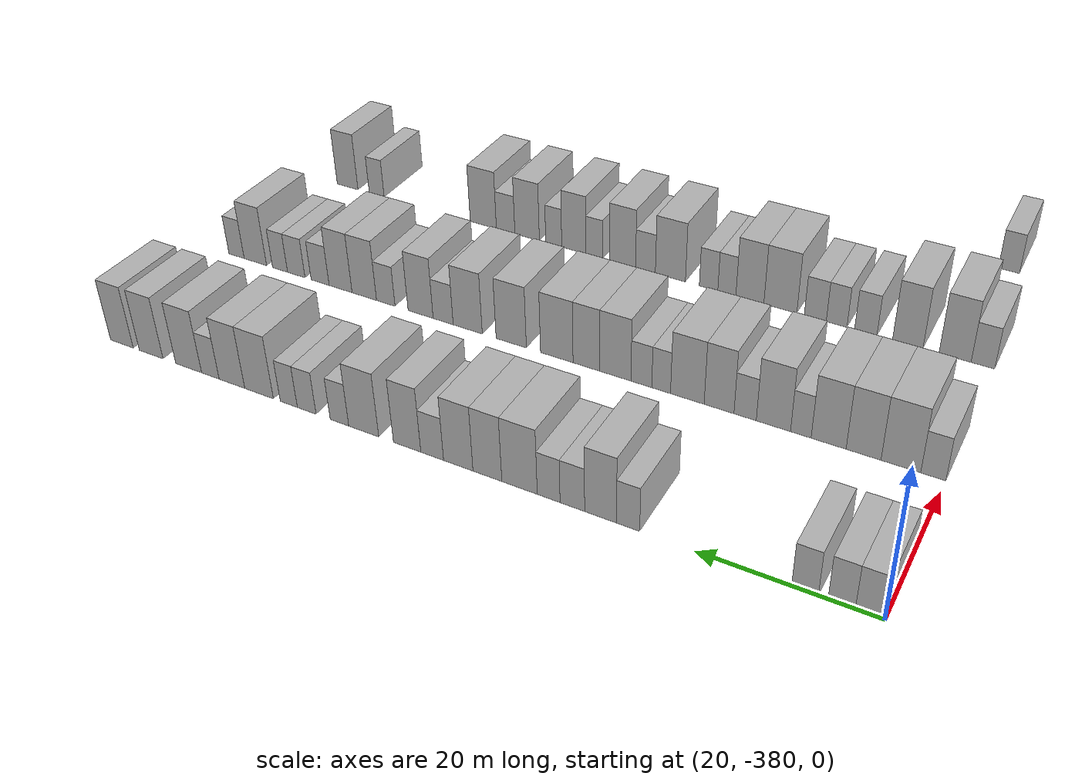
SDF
<sdf version="1.6">
 <world name="default">
  <model name="building_1">
   <static>1</static>
   <pose>25.0000 -378.5083 0 0.000000 0.000000 0.000000</pose>
   <link name="link">
    <pose>0 0 3.00 0 0 0</pose>
    <collision name="collision"><geometry><box><size>10.0000 2.9835 6.0000</size></box></geometry></collision>
    <visual name="visual">
     <cast_shadows>0</cast_shadows>
     <geometry><box><size>10.0000 2.9835 6.0000</size></box></geometry>
     <material>
      <script>
       <uri>model://HANNAS_wall/materials/scripts</uri>
       <uri>model://HANNAS_wall/materials/textures</uri>
       <name>vrc/HANNAS_wall</name>
      </script>
     </material>
    </visual>
   </link>
  </model>
  <model name="building_2">
   <static>1</static>
   <pose>25.0000 -375.6209 0 0.000000 0.000000 0.000000</pose>
   <link name="link">
    <pose>0 0 3.00 0 0 0</pose>
    <collision name="collision"><geometry><box><size>10.0000 2.7913 6.0000</size></box></geometry></collision>
    <visual name="visual">
     <cast_shadows>0</cast_shadows>
     <geometry><box><size>10.0000 2.7913 6.0000</size></box></geometry>
     <material>
      <script>
       <uri>model://HANNAS_wall/materials/scripts</uri>
       <uri>model://HANNAS_wall/materials/textures</uri>
       <name>vrc/HANNAS_wall</name>
      </script>
     </material>
    </visual>
   </link>
  </model>
  <model name="building_3">
   <static>1</static>
   <pose>25.0000 -371.8338 0 0.000000 0.000000 0.000000</pose>
   <link name="link">
    <pose>0 0 3.00 0 0 0</pose>
    <collision name="collision"><geometry><box><size>10.0000 2.7829 6.0000</size></box></geometry></collision>
    <visual name="visual">
     <cast_shadows>0</cast_shadows>
     <geometry><box><size>10.0000 2.7829 6.0000</size></box></geometry>
     <material>
      <script>
       <uri>model://HANNAS_wall/materials/scripts</uri>
       <uri>model://HANNAS_wall/materials/textures</uri>
       <name>vrc/HANNAS_wall</name>
      </script>
     </material>
    </visual>
   </link>
  </model>
  <model name="building_4">
   <static>1</static>
   <pose>25.0000 -352.3981 0 0.000000 0.000000 0.000000</pose>
   <link name="link">
    <pose>0 0 3.00 0 0 0</pose>
    <collision name="collision"><geometry><box><size>10.0000 2.6962 6.0000</size></box></geometry></collision>
    <visual name="visual">
     <cast_shadows>0</cast_shadows>
     <geometry><box><size>10.0000 2.6962 6.0000</size></box></geometry>
     <material>
      <script>
       <uri>model://HANNAS_wall/materials/scripts</uri>
       <uri>model://HANNAS_wall/materials/textures</uri>
       <name>vrc/HANNAS_wall</name>
      </script>
     </material>
    </visual>
   </link>
  </model>
  <model name="building_5">
   <static>1</static>
   <pose>25.0000 -349.1790 0 0.000000 0.000000 0.000000</pose>
   <link name="link">
    <pose>0 0 4.50 0 0 0</pose>
    <collision name="collision"><geometry><box><size>10.0000 3.7419 9.0000</size></box></geometry></collision>
    <visual name="visual">
     <cast_shadows>0</cast_shadows>
     <geometry><box><size>10.0000 3.7419 9.0000</size></box></geometry>
     <material>
      <script>
       <uri>model://HANNAS_wall/materials/scripts</uri>
       <uri>model://HANNAS_wall/materials/textures</uri>
       <name>vrc/HANNAS_wall</name>
      </script>
     </material>
    </visual>
   </link>
  </model>
  <model name="building_6">
   <static>1</static>
   <pose>25.0000 -345.8332 0 0.000000 0.000000 0.000000</pose>
   <link name="link">
    <pose>0 0 3.00 0 0 0</pose>
    <collision name="collision"><geometry><box><size>10.0000 2.9496 6.0000</size></box></geometry></collision>
    <visual name="visual">
     <cast_shadows>0</cast_shadows>
     <geometry><box><size>10.0000 2.9496 6.0000</size></box></geometry>
     <material>
      <script>
       <uri>model://HANNAS_wall/materials/scripts</uri>
       <uri>model://HANNAS_wall/materials/textures</uri>
       <name>vrc/HANNAS_wall</name>
      </script>
     </material>
    </visual>
   </link>
  </model>
  <model name="building_7">
   <static>1</static>
   <pose>25.0000 -342.9713 0 0.000000 0.000000 0.000000</pose>
   <link name="link">
    <pose>0 0 3.00 0 0 0</pose>
    <collision name="collision"><geometry><box><size>10.0000 2.7743 6.0000</size></box></geometry></collision>
    <visual name="visual">
     <cast_shadows>0</cast_shadows>
     <geometry><box><size>10.0000 2.7743 6.0000</size></box></geometry>
     <material>
      <script>
       <uri>model://HANNAS_wall/materials/scripts</uri>
       <uri>model://HANNAS_wall/materials/textures</uri>
       <name>vrc/HANNAS_wall</name>
      </script>
     </material>
    </visual>
   </link>
  </model>
  <model name="building_8">
   <static>1</static>
   <pose>25.0000 -339.3869 0 0.000000 0.000000 0.000000</pose>
   <link name="link">
    <pose>0 0 4.50 0 0 0</pose>
    <collision name="collision"><geometry><box><size>10.0000 4.3945 9.0000</size></box></geometry></collision>
    <visual name="visual">
     <cast_shadows>0</cast_shadows>
     <geometry><box><size>10.0000 4.3945 9.0000</size></box></geometry>
     <material>
      <script>
       <uri>model://HANNAS_wall/materials/scripts</uri>
       <uri>model://HANNAS_wall/materials/textures</uri>
       <name>vrc/HANNAS_wall</name>
      </script>
     </material>
    </visual>
   </link>
  </model>
  <model name="building_9">
   <static>1</static>
   <pose>25.0000 -335.3621 0 0.000000 0.000000 0.000000</pose>
   <link name="link">
    <pose>0 0 4.50 0 0 0</pose>
    <collision name="collision"><geometry><box><size>10.0000 3.6552 9.0000</size></box></geometry></collision>
    <visual name="visual">
     <cast_shadows>0</cast_shadows>
     <geometry><box><size>10.0000 3.6552 9.0000</size></box></geometry>
     <material>
      <script>
       <uri>model://HANNAS_wall/materials/scripts</uri>
       <uri>model://HANNAS_wall/materials/textures</uri>
       <name>vrc/HANNAS_wall</name>
      </script>
     </material>
    </visual>
   </link>
  </model>
  <model name="building_10">
   <static>1</static>
   <pose>25.0000 -331.6372 0 0.000000 0.000000 0.000000</pose>
   <link name="link">
    <pose>0 0 4.50 0 0 0</pose>
    <collision name="collision"><geometry><box><size>10.0000 3.7946 9.0000</size></box></geometry></collision>
    <visual name="visual">
     <cast_shadows>0</cast_shadows>
     <geometry><box><size>10.0000 3.7946 9.0000</size></box></geometry>
     <material>
      <script>
       <uri>model://HANNAS_wall/materials/scripts</uri>
       <uri>model://HANNAS_wall/materials/textures</uri>
       <name>vrc/HANNAS_wall</name>
      </script>
     </material>
    </visual>
   </link>
  </model>
  <model name="building_11">
   <static>1</static>
   <pose>25.0000 -328.2481 0 0.000000 0.000000 0.000000</pose>
   <link name="link">
    <pose>0 0 3.00 0 0 0</pose>
    <collision name="collision"><geometry><box><size>10.0000 2.9835 6.0000</size></box></geometry></collision>
    <visual name="visual">
     <cast_shadows>0</cast_shadows>
     <geometry><box><size>10.0000 2.9835 6.0000</size></box></geometry>
     <material>
      <script>
       <uri>model://HANNAS_wall/materials/scripts</uri>
       <uri>model://HANNAS_wall/materials/textures</uri>
       <name>vrc/HANNAS_wall</name>
      </script>
     </material>
    </visual>
   </link>
  </model>
  <model name="building_12">
   <static>1</static>
   <pose>25.0000 -324.9343 0 0.000000 0.000000 0.000000</pose>
   <link name="link">
    <pose>0 0 4.50 0 0 0</pose>
    <collision name="collision"><geometry><box><size>10.0000 3.6440 9.0000</size></box></geometry></collision>
    <visual name="visual">
     <cast_shadows>0</cast_shadows>
     <geometry><box><size>10.0000 3.6440 9.0000</size></box></geometry>
     <material>
      <script>
       <uri>model://HANNAS_wall/materials/scripts</uri>
       <uri>model://HANNAS_wall/materials/textures</uri>
       <name>vrc/HANNAS_wall</name>
      </script>
     </material>
    </visual>
   </link>
  </model>
  <model name="building_13">
   <static>1</static>
   <pose>25.0000 -319.0529 0 0.000000 0.000000 0.000000</pose>
   <link name="link">
    <pose>0 0 4.50 0 0 0</pose>
    <collision name="collision"><geometry><box><size>10.0000 4.1188 9.0000</size></box></geometry></collision>
    <visual name="visual">
     <cast_shadows>0</cast_shadows>
     <geometry><box><size>10.0000 4.1188 9.0000</size></box></geometry>
     <material>
      <script>
       <uri>model://HANNAS_wall/materials/scripts</uri>
       <uri>model://HANNAS_wall/materials/textures</uri>
       <name>vrc/HANNAS_wall</name>
      </script>
     </material>
    </visual>
   </link>
  </model>
  <model name="building_14">
   <static>1</static>
   <pose>25.0000 -315.7018 0 0.000000 0.000000 0.000000</pose>
   <link name="link">
    <pose>0 0 3.00 0 0 0</pose>
    <collision name="collision"><geometry><box><size>10.0000 2.5833 6.0000</size></box></geometry></collision>
    <visual name="visual">
     <cast_shadows>0</cast_shadows>
     <geometry><box><size>10.0000 2.5833 6.0000</size></box></geometry>
     <material>
      <script>
       <uri>model://HANNAS_wall/materials/scripts</uri>
       <uri>model://HANNAS_wall/materials/textures</uri>
       <name>vrc/HANNAS_wall</name>
      </script>
     </material>
    </visual>
   </link>
  </model>
  <model name="building_15">
   <static>1</static>
   <pose>25.0000 -311.0761 0 0.000000 0.000000 0.000000</pose>
   <link name="link">
    <pose>0 0 3.00 0 0 0</pose>
    <collision name="collision"><geometry><box><size>10.0000 2.6683 6.0000</size></box></geometry></collision>
    <visual name="visual">
     <cast_shadows>0</cast_shadows>
     <geometry><box><size>10.0000 2.6683 6.0000</size></box></geometry>
     <material>
      <script>
       <uri>model://HANNAS_wall/materials/scripts</uri>
       <uri>model://HANNAS_wall/materials/textures</uri>
       <name>vrc/HANNAS_wall</name>
      </script>
     </material>
    </visual>
   </link>
  </model>
  <model name="building_16">
   <static>1</static>
   <pose>25.0000 -308.5085 0 0.000000 0.000000 0.000000</pose>
   <link name="link">
    <pose>0 0 3.00 0 0 0</pose>
    <collision name="collision"><geometry><box><size>10.0000 2.4668 6.0000</size></box></geometry></collision>
    <visual name="visual">
     <cast_shadows>0</cast_shadows>
     <geometry><box><size>10.0000 2.4668 6.0000</size></box></geometry>
     <material>
      <script>
       <uri>model://HANNAS_wall/materials/scripts</uri>
       <uri>model://HANNAS_wall/materials/textures</uri>
       <name>vrc/HANNAS_wall</name>
      </script>
     </material>
    </visual>
   </link>
  </model>
  <model name="building_17">
   <static>1</static>
   <pose>25.0000 -304.1616 0 0.000000 0.000000 0.000000</pose>
   <link name="link">
    <pose>0 0 4.50 0 0 0</pose>
    <collision name="collision"><geometry><box><size>10.0000 4.2270 9.0000</size></box></geometry></collision>
    <visual name="visual">
     <cast_shadows>0</cast_shadows>
     <geometry><box><size>10.0000 4.2270 9.0000</size></box></geometry>
     <material>
      <script>
       <uri>model://HANNAS_wall/materials/scripts</uri>
       <uri>model://HANNAS_wall/materials/textures</uri>
       <name>vrc/HANNAS_wall</name>
      </script>
     </material>
    </visual>
   </link>
  </model>
  <model name="building_18">
   <static>1</static>
   <pose>25.0000 -300.1236 0 0.000000 0.000000 0.000000</pose>
   <link name="link">
    <pose>0 0 4.50 0 0 0</pose>
    <collision name="collision"><geometry><box><size>10.0000 3.8491 9.0000</size></box></geometry></collision>
    <visual name="visual">
     <cast_shadows>0</cast_shadows>
     <geometry><box><size>10.0000 3.8491 9.0000</size></box></geometry>
     <material>
      <script>
       <uri>model://HANNAS_wall/materials/scripts</uri>
       <uri>model://HANNAS_wall/materials/textures</uri>
       <name>vrc/HANNAS_wall</name>
      </script>
     </material>
    </visual>
   </link>
  </model>
  <model name="building_19">
   <static>1</static>
   <pose>25.0000 -296.8605 0 0.000000 0.000000 0.000000</pose>
   <link name="link">
    <pose>0 0 3.00 0 0 0</pose>
    <collision name="collision"><geometry><box><size>10.0000 2.6770 6.0000</size></box></geometry></collision>
    <visual name="visual">
     <cast_shadows>0</cast_shadows>
     <geometry><box><size>10.0000 2.6770 6.0000</size></box></geometry>
     <material>
      <script>
       <uri>model://HANNAS_wall/materials/scripts</uri>
       <uri>model://HANNAS_wall/materials/textures</uri>
       <name>vrc/HANNAS_wall</name>
      </script>
     </material>
    </visual>
   </link>
  </model>
  <model name="building_20">
   <static>1</static>
   <pose>25.0000 -293.5178 0 0.000000 0.000000 0.000000</pose>
   <link name="link">
    <pose>0 0 4.50 0 0 0</pose>
    <collision name="collision"><geometry><box><size>10.0000 4.0084 9.0000</size></box></geometry></collision>
    <visual name="visual">
     <cast_shadows>0</cast_shadows>
     <geometry><box><size>10.0000 4.0084 9.0000</size></box></geometry>
     <material>
      <script>
       <uri>model://HANNAS_wall/materials/scripts</uri>
       <uri>model://HANNAS_wall/materials/textures</uri>
       <name>vrc/HANNAS_wall</name>
      </script>
     </material>
    </visual>
   </link>
  </model>
  <model name="building_21">
   <static>1</static>
   <pose>25.0000 -287.6362 0 0.000000 0.000000 0.000000</pose>
   <link name="link">
    <pose>0 0 4.50 0 0 0</pose>
    <collision name="collision"><geometry><box><size>10.0000 3.7547 9.0000</size></box></geometry></collision>
    <visual name="visual">
     <cast_shadows>0</cast_shadows>
     <geometry><box><size>10.0000 3.7547 9.0000</size></box></geometry>
     <material>
      <script>
       <uri>model://HANNAS_wall/materials/scripts</uri>
       <uri>model://HANNAS_wall/materials/textures</uri>
       <name>vrc/HANNAS_wall</name>
      </script>
     </material>
    </visual>
   </link>
  </model>
  <model name="building_22">
   <static>1</static>
   <pose>25.0000 -282.9233 0 0.000000 0.000000 0.000000</pose>
   <link name="link">
    <pose>0 0 4.50 0 0 0</pose>
    <collision name="collision"><geometry><box><size>10.0000 3.6711 9.0000</size></box></geometry></collision>
    <visual name="visual">
     <cast_shadows>0</cast_shadows>
     <geometry><box><size>10.0000 3.6711 9.0000</size></box></geometry>
     <material>
      <script>
       <uri>model://HANNAS_wall/materials/scripts</uri>
       <uri>model://HANNAS_wall/materials/textures</uri>
       <name>vrc/HANNAS_wall</name>
      </script>
     </material>
    </visual>
   </link>
  </model>
  <model name="building_183">
   <static>1</static>
   <pose>47.0000 -378.6037 0 0.000000 0.000000 0.000000</pose>
   <link name="link">
    <pose>0 0 3.00 0 0 0</pose>
    <collision name="collision"><geometry><box><size>10.0000 2.7925 6.0000</size></box></geometry></collision>
    <visual name="visual">
     <cast_shadows>0</cast_shadows>
     <geometry><box><size>10.0000 2.7925 6.0000</size></box></geometry>
     <material>
      <script>
       <uri>model://HANNAS_wall/materials/scripts</uri>
       <uri>model://HANNAS_wall/materials/textures</uri>
       <name>vrc/HANNAS_wall</name>
      </script>
     </material>
    </visual>
   </link>
  </model>
  <model name="building_184">
   <static>1</static>
   <pose>47.0000 -374.9701 0 0.000000 0.000000 0.000000</pose>
   <link name="link">
    <pose>0 0 4.50 0 0 0</pose>
    <collision name="collision"><geometry><box><size>10.0000 4.4749 9.0000</size></box></geometry></collision>
    <visual name="visual">
     <cast_shadows>0</cast_shadows>
     <geometry><box><size>10.0000 4.4749 9.0000</size></box></geometry>
     <material>
      <script>
       <uri>model://HANNAS_wall/materials/scripts</uri>
       <uri>model://HANNAS_wall/materials/textures</uri>
       <name>vrc/HANNAS_wall</name>
      </script>
     </material>
    </visual>
   </link>
  </model>
  <model name="building_185">
   <static>1</static>
   <pose>47.0000 -370.7247 0 0.000000 0.000000 0.000000</pose>
   <link name="link">
    <pose>0 0 4.50 0 0 0</pose>
    <collision name="collision"><geometry><box><size>10.0000 4.0158 9.0000</size></box></geometry></collision>
    <visual name="visual">
     <cast_shadows>0</cast_shadows>
     <geometry><box><size>10.0000 4.0158 9.0000</size></box></geometry>
     <material>
      <script>
       <uri>model://HANNAS_wall/materials/scripts</uri>
       <uri>model://HANNAS_wall/materials/textures</uri>
       <name>vrc/HANNAS_wall</name>
      </script>
     </material>
    </visual>
   </link>
  </model>
  <model name="building_186">
   <static>1</static>
   <pose>47.0000 -366.6584 0 0.000000 0.000000 0.000000</pose>
   <link name="link">
    <pose>0 0 4.50 0 0 0</pose>
    <collision name="collision"><geometry><box><size>10.0000 4.1169 9.0000</size></box></geometry></collision>
    <visual name="visual">
     <cast_shadows>0</cast_shadows>
     <geometry><box><size>10.0000 4.1169 9.0000</size></box></geometry>
     <material>
      <script>
       <uri>model://HANNAS_wall/materials/scripts</uri>
       <uri>model://HANNAS_wall/materials/textures</uri>
       <name>vrc/HANNAS_wall</name>
      </script>
     </material>
    </visual>
   </link>
  </model>
  <model name="building_187">
   <static>1</static>
   <pose>47.0000 -363.3708 0 0.000000 0.000000 0.000000</pose>
   <link name="link">
    <pose>0 0 3.00 0 0 0</pose>
    <collision name="collision"><geometry><box><size>10.0000 2.4584 6.0000</size></box></geometry></collision>
    <visual name="visual">
     <cast_shadows>0</cast_shadows>
     <geometry><box><size>10.0000 2.4584 6.0000</size></box></geometry>
     <material>
      <script>
       <uri>model://HANNAS_wall/materials/scripts</uri>
       <uri>model://HANNAS_wall/materials/textures</uri>
       <name>vrc/HANNAS_wall</name>
      </script>
     </material>
    </visual>
   </link>
  </model>
  <model name="building_188">
   <static>1</static>
   <pose>47.0000 -360.0653 0 0.000000 0.000000 0.000000</pose>
   <link name="link">
    <pose>0 0 4.50 0 0 0</pose>
    <collision name="collision"><geometry><box><size>10.0000 4.1525 9.0000</size></box></geometry></collision>
    <visual name="visual">
     <cast_shadows>0</cast_shadows>
     <geometry><box><size>10.0000 4.1525 9.0000</size></box></geometry>
     <material>
      <script>
       <uri>model://HANNAS_wall/materials/scripts</uri>
       <uri>model://HANNAS_wall/materials/textures</uri>
       <name>vrc/HANNAS_wall</name>
      </script>
     </material>
    </visual>
   </link>
  </model>
  <model name="building_189">
   <static>1</static>
   <pose>47.0000 -356.6125 0 0.000000 0.000000 0.000000</pose>
   <link name="link">
    <pose>0 0 3.00 0 0 0</pose>
    <collision name="collision"><geometry><box><size>10.0000 2.7532 6.0000</size></box></geometry></collision>
    <visual name="visual">
     <cast_shadows>0</cast_shadows>
     <geometry><box><size>10.0000 2.7532 6.0000</size></box></geometry>
     <material>
      <script>
       <uri>model://HANNAS_wall/materials/scripts</uri>
       <uri>model://HANNAS_wall/materials/textures</uri>
       <name>vrc/HANNAS_wall</name>
      </script>
     </material>
    </visual>
   </link>
  </model>
  <model name="building_190">
   <static>1</static>
   <pose>47.0000 -353.3675 0 0.000000 0.000000 0.000000</pose>
   <link name="link">
    <pose>0 0 4.50 0 0 0</pose>
    <collision name="collision"><geometry><box><size>10.0000 3.7368 9.0000</size></box></geometry></collision>
    <visual name="visual">
     <cast_shadows>0</cast_shadows>
     <geometry><box><size>10.0000 3.7368 9.0000</size></box></geometry>
     <material>
      <script>
       <uri>model://HANNAS_wall/materials/scripts</uri>
       <uri>model://HANNAS_wall/materials/textures</uri>
       <name>vrc/HANNAS_wall</name>
      </script>
     </material>
    </visual>
   </link>
  </model>
  <model name="building_191">
   <static>1</static>
   <pose>47.0000 -349.3487 0 0.000000 0.000000 0.000000</pose>
   <link name="link">
    <pose>0 0 4.50 0 0 0</pose>
    <collision name="collision"><geometry><box><size>10.0000 4.3009 9.0000</size></box></geometry></collision>
    <visual name="visual">
     <cast_shadows>0</cast_shadows>
     <geometry><box><size>10.0000 4.3009 9.0000</size></box></geometry>
     <material>
      <script>
       <uri>model://HANNAS_wall/materials/scripts</uri>
       <uri>model://HANNAS_wall/materials/textures</uri>
       <name>vrc/HANNAS_wall</name>
      </script>
     </material>
    </visual>
   </link>
  </model>
  <model name="building_192">
   <static>1</static>
   <pose>47.0000 -345.9846 0 0.000000 0.000000 0.000000</pose>
   <link name="link">
    <pose>0 0 3.00 0 0 0</pose>
    <collision name="collision"><geometry><box><size>10.0000 2.4273 6.0000</size></box></geometry></collision>
    <visual name="visual">
     <cast_shadows>0</cast_shadows>
     <geometry><box><size>10.0000 2.4273 6.0000</size></box></geometry>
     <material>
      <script>
       <uri>model://HANNAS_wall/materials/scripts</uri>
       <uri>model://HANNAS_wall/materials/textures</uri>
       <name>vrc/HANNAS_wall</name>
      </script>
     </material>
    </visual>
   </link>
  </model>
  <model name="building_193">
   <static>1</static>
   <pose>47.0000 -343.4006 0 0.000000 0.000000 0.000000</pose>
   <link name="link">
    <pose>0 0 3.00 0 0 0</pose>
    <collision name="collision"><geometry><box><size>10.0000 2.7406 6.0000</size></box></geometry></collision>
    <visual name="visual">
     <cast_shadows>0</cast_shadows>
     <geometry><box><size>10.0000 2.7406 6.0000</size></box></geometry>
     <material>
      <script>
       <uri>model://HANNAS_wall/materials/scripts</uri>
       <uri>model://HANNAS_wall/materials/textures</uri>
       <name>vrc/HANNAS_wall</name>
      </script>
     </material>
    </visual>
   </link>
  </model>
  <model name="building_194">
   <static>1</static>
   <pose>47.0000 -339.9591 0 0.000000 0.000000 0.000000</pose>
   <link name="link">
    <pose>0 0 4.50 0 0 0</pose>
    <collision name="collision"><geometry><box><size>10.0000 4.1425 9.0000</size></box></geometry></collision>
    <visual name="visual">
     <cast_shadows>0</cast_shadows>
     <geometry><box><size>10.0000 4.1425 9.0000</size></box></geometry>
     <material>
      <script>
       <uri>model://HANNAS_wall/materials/scripts</uri>
       <uri>model://HANNAS_wall/materials/textures</uri>
       <name>vrc/HANNAS_wall</name>
      </script>
     </material>
    </visual>
   </link>
  </model>
  <model name="building_195">
   <static>1</static>
   <pose>47.0000 -336.0669 0 0.000000 0.000000 0.000000</pose>
   <link name="link">
    <pose>0 0 4.50 0 0 0</pose>
    <collision name="collision"><geometry><box><size>10.0000 3.6419 9.0000</size></box></geometry></collision>
    <visual name="visual">
     <cast_shadows>0</cast_shadows>
     <geometry><box><size>10.0000 3.6419 9.0000</size></box></geometry>
     <material>
      <script>
       <uri>model://HANNAS_wall/materials/scripts</uri>
       <uri>model://HANNAS_wall/materials/textures</uri>
       <name>vrc/HANNAS_wall</name>
      </script>
     </material>
    </visual>
   </link>
  </model>
  <model name="building_196">
   <static>1</static>
   <pose>47.0000 -331.9987 0 0.000000 0.000000 0.000000</pose>
   <link name="link">
    <pose>0 0 4.50 0 0 0</pose>
    <collision name="collision"><geometry><box><size>10.0000 4.4944 9.0000</size></box></geometry></collision>
    <visual name="visual">
     <cast_shadows>0</cast_shadows>
     <geometry><box><size>10.0000 4.4944 9.0000</size></box></geometry>
     <material>
      <script>
       <uri>model://HANNAS_wall/materials/scripts</uri>
       <uri>model://HANNAS_wall/materials/textures</uri>
       <name>vrc/HANNAS_wall</name>
      </script>
     </material>
    </visual>
   </link>
  </model>
  <model name="building_197">
   <static>1</static>
   <pose>47.0000 -325.5968 0 0.000000 0.000000 0.000000</pose>
   <link name="link">
    <pose>0 0 4.50 0 0 0</pose>
    <collision name="collision"><geometry><box><size>10.0000 4.3095 9.0000</size></box></geometry></collision>
    <visual name="visual">
     <cast_shadows>0</cast_shadows>
     <geometry><box><size>10.0000 4.3095 9.0000</size></box></geometry>
     <material>
      <script>
       <uri>model://HANNAS_wall/materials/scripts</uri>
       <uri>model://HANNAS_wall/materials/textures</uri>
       <name>vrc/HANNAS_wall</name>
      </script>
     </material>
    </visual>
   </link>
  </model>
  <model name="building_198">
   <static>1</static>
   <pose>47.0000 -319.3110 0 0.000000 0.000000 0.000000</pose>
   <link name="link">
    <pose>0 0 4.50 0 0 0</pose>
    <collision name="collision"><geometry><box><size>10.0000 4.2621 9.0000</size></box></geometry></collision>
    <visual name="visual">
     <cast_shadows>0</cast_shadows>
     <geometry><box><size>10.0000 4.2621 9.0000</size></box></geometry>
     <material>
      <script>
       <uri>model://HANNAS_wall/materials/scripts</uri>
       <uri>model://HANNAS_wall/materials/textures</uri>
       <name>vrc/HANNAS_wall</name>
      </script>
     </material>
    </visual>
   </link>
  </model>
  <model name="building_199">
   <static>1</static>
   <pose>47.0000 -315.6862 0 0.000000 0.000000 0.000000</pose>
   <link name="link">
    <pose>0 0 3.00 0 0 0</pose>
    <collision name="collision"><geometry><box><size>10.0000 2.9875 6.0000</size></box></geometry></collision>
    <visual name="visual">
     <cast_shadows>0</cast_shadows>
     <geometry><box><size>10.0000 2.9875 6.0000</size></box></geometry>
     <material>
      <script>
       <uri>model://HANNAS_wall/materials/scripts</uri>
       <uri>model://HANNAS_wall/materials/textures</uri>
       <name>vrc/HANNAS_wall</name>
      </script>
     </material>
    </visual>
   </link>
  </model>
  <model name="building_200">
   <static>1</static>
   <pose>47.0000 -312.2985 0 0.000000 0.000000 0.000000</pose>
   <link name="link">
    <pose>0 0 4.50 0 0 0</pose>
    <collision name="collision"><geometry><box><size>10.0000 3.7880 9.0000</size></box></geometry></collision>
    <visual name="visual">
     <cast_shadows>0</cast_shadows>
     <geometry><box><size>10.0000 3.7880 9.0000</size></box></geometry>
     <material>
      <script>
       <uri>model://HANNAS_wall/materials/scripts</uri>
       <uri>model://HANNAS_wall/materials/textures</uri>
       <name>vrc/HANNAS_wall</name>
      </script>
     </material>
    </visual>
   </link>
  </model>
  <model name="building_201">
   <static>1</static>
   <pose>47.0000 -306.9753 0 0.000000 0.000000 0.000000</pose>
   <link name="link">
    <pose>0 0 3.00 0 0 0</pose>
    <collision name="collision"><geometry><box><size>10.0000 2.8583 6.0000</size></box></geometry></collision>
    <visual name="visual">
     <cast_shadows>0</cast_shadows>
     <geometry><box><size>10.0000 2.8583 6.0000</size></box></geometry>
     <material>
      <script>
       <uri>model://HANNAS_wall/materials/scripts</uri>
       <uri>model://HANNAS_wall/materials/textures</uri>
       <name>vrc/HANNAS_wall</name>
      </script>
     </material>
    </visual>
   </link>
  </model>
  <model name="building_202">
   <static>1</static>
   <pose>47.0000 -303.6274 0 0.000000 0.000000 0.000000</pose>
   <link name="link">
    <pose>0 0 4.50 0 0 0</pose>
    <collision name="collision"><geometry><box><size>10.0000 3.8376 9.0000</size></box></geometry></collision>
    <visual name="visual">
     <cast_shadows>0</cast_shadows>
     <geometry><box><size>10.0000 3.8376 9.0000</size></box></geometry>
     <material>
      <script>
       <uri>model://HANNAS_wall/materials/scripts</uri>
       <uri>model://HANNAS_wall/materials/textures</uri>
       <name>vrc/HANNAS_wall</name>
      </script>
     </material>
    </visual>
   </link>
  </model>
  <model name="building_203">
   <static>1</static>
   <pose>47.0000 -299.8800 0 0.000000 0.000000 0.000000</pose>
   <link name="link">
    <pose>0 0 4.50 0 0 0</pose>
    <collision name="collision"><geometry><box><size>10.0000 3.6573 9.0000</size></box></geometry></collision>
    <visual name="visual">
     <cast_shadows>0</cast_shadows>
     <geometry><box><size>10.0000 3.6573 9.0000</size></box></geometry>
     <material>
      <script>
       <uri>model://HANNAS_wall/materials/scripts</uri>
       <uri>model://HANNAS_wall/materials/textures</uri>
       <name>vrc/HANNAS_wall</name>
      </script>
     </material>
    </visual>
   </link>
  </model>
  <model name="building_204">
   <static>1</static>
   <pose>47.0000 -296.5961 0 0.000000 0.000000 0.000000</pose>
   <link name="link">
    <pose>0 0 3.00 0 0 0</pose>
    <collision name="collision"><geometry><box><size>10.0000 2.9105 6.0000</size></box></geometry></collision>
    <visual name="visual">
     <cast_shadows>0</cast_shadows>
     <geometry><box><size>10.0000 2.9105 6.0000</size></box></geometry>
     <material>
      <script>
       <uri>model://HANNAS_wall/materials/scripts</uri>
       <uri>model://HANNAS_wall/materials/textures</uri>
       <name>vrc/HANNAS_wall</name>
      </script>
     </material>
    </visual>
   </link>
  </model>
  <model name="building_205">
   <static>1</static>
   <pose>47.0000 -292.7043 0 0.000000 0.000000 0.000000</pose>
   <link name="link">
    <pose>0 0 3.00 0 0 0</pose>
    <collision name="collision"><geometry><box><size>10.0000 2.8731 6.0000</size></box></geometry></collision>
    <visual name="visual">
     <cast_shadows>0</cast_shadows>
     <geometry><box><size>10.0000 2.8731 6.0000</size></box></geometry>
     <material>
      <script>
       <uri>model://HANNAS_wall/materials/scripts</uri>
       <uri>model://HANNAS_wall/materials/textures</uri>
       <name>vrc/HANNAS_wall</name>
      </script>
     </material>
    </visual>
   </link>
  </model>
  <model name="building_206">
   <static>1</static>
   <pose>47.0000 -290.0241 0 0.000000 0.000000 0.000000</pose>
   <link name="link">
    <pose>0 0 3.00 0 0 0</pose>
    <collision name="collision"><geometry><box><size>10.0000 2.4872 6.0000</size></box></geometry></collision>
    <visual name="visual">
     <cast_shadows>0</cast_shadows>
     <geometry><box><size>10.0000 2.4872 6.0000</size></box></geometry>
     <material>
      <script>
       <uri>model://HANNAS_wall/materials/scripts</uri>
       <uri>model://HANNAS_wall/materials/textures</uri>
       <name>vrc/HANNAS_wall</name>
      </script>
     </material>
    </visual>
   </link>
  </model>
  <model name="building_207">
   <static>1</static>
   <pose>47.0000 -285.8859 0 0.000000 0.000000 0.000000</pose>
   <link name="link">
    <pose>0 0 4.50 0 0 0</pose>
    <collision name="collision"><geometry><box><size>10.0000 3.7892 9.0000</size></box></geometry></collision>
    <visual name="visual">
     <cast_shadows>0</cast_shadows>
     <geometry><box><size>10.0000 3.7892 9.0000</size></box></geometry>
     <material>
      <script>
       <uri>model://HANNAS_wall/materials/scripts</uri>
       <uri>model://HANNAS_wall/materials/textures</uri>
       <name>vrc/HANNAS_wall</name>
      </script>
     </material>
    </visual>
   </link>
  </model>
  <model name="building_208">
   <static>1</static>
   <pose>47.0000 -282.6938 0 0.000000 0.000000 0.000000</pose>
   <link name="link">
    <pose>0 0 3.00 0 0 0</pose>
    <collision name="collision"><geometry><box><size>10.0000 2.5951 6.0000</size></box></geometry></collision>
    <visual name="visual">
     <cast_shadows>0</cast_shadows>
     <geometry><box><size>10.0000 2.5951 6.0000</size></box></geometry>
     <material>
      <script>
       <uri>model://HANNAS_wall/materials/scripts</uri>
       <uri>model://HANNAS_wall/materials/textures</uri>
       <name>vrc/HANNAS_wall</name>
      </script>
     </material>
    </visual>
   </link>
  </model>
  <model name="building_377">
   <static>1</static>
   <pose>69.0000 -378.5638 0 0.000000 0.000000 0.000000</pose>
   <link name="link">
    <pose>0 0 3.00 0 0 0</pose>
    <collision name="collision"><geometry><box><size>10.0000 2.8725 6.0000</size></box></geometry></collision>
    <visual name="visual">
     <cast_shadows>0</cast_shadows>
     <geometry><box><size>10.0000 2.8725 6.0000</size></box></geometry>
     <material>
      <script>
       <uri>model://HANNAS_wall/materials/scripts</uri>
       <uri>model://HANNAS_wall/materials/textures</uri>
       <name>vrc/HANNAS_wall</name>
      </script>
     </material>
    </visual>
   </link>
  </model>
  <model name="building_378">
   <static>1</static>
   <pose>69.0000 -375.1579 0 0.000000 0.000000 0.000000</pose>
   <link name="link">
    <pose>0 0 4.50 0 0 0</pose>
    <collision name="collision"><geometry><box><size>10.0000 3.9392 9.0000</size></box></geometry></collision>
    <visual name="visual">
     <cast_shadows>0</cast_shadows>
     <geometry><box><size>10.0000 3.9392 9.0000</size></box></geometry>
     <material>
      <script>
       <uri>model://HANNAS_wall/materials/scripts</uri>
       <uri>model://HANNAS_wall/materials/textures</uri>
       <name>vrc/HANNAS_wall</name>
      </script>
     </material>
    </visual>
   </link>
  </model>
  <model name="building_379">
   <static>1</static>
   <pose>69.0000 -369.2662 0 0.000000 0.000000 0.000000</pose>
   <link name="link">
    <pose>0 0 4.50 0 0 0</pose>
    <collision name="collision"><geometry><box><size>10.0000 3.8443 9.0000</size></box></geometry></collision>
    <visual name="visual">
     <cast_shadows>0</cast_shadows>
     <geometry><box><size>10.0000 3.8443 9.0000</size></box></geometry>
     <material>
      <script>
       <uri>model://HANNAS_wall/materials/scripts</uri>
       <uri>model://HANNAS_wall/materials/textures</uri>
       <name>vrc/HANNAS_wall</name>
      </script>
     </material>
    </visual>
   </link>
  </model>
  <model name="building_380">
   <static>1</static>
   <pose>69.0000 -363.9006 0 0.000000 0.000000 0.000000</pose>
   <link name="link">
    <pose>0 0 3.00 0 0 0</pose>
    <collision name="collision"><geometry><box><size>10.0000 2.8868 6.0000</size></box></geometry></collision>
    <visual name="visual">
     <cast_shadows>0</cast_shadows>
     <geometry><box><size>10.0000 2.8868 6.0000</size></box></geometry>
     <material>
      <script>
       <uri>model://HANNAS_wall/materials/scripts</uri>
       <uri>model://HANNAS_wall/materials/textures</uri>
       <name>vrc/HANNAS_wall</name>
      </script>
     </material>
    </visual>
   </link>
  </model>
  <model name="building_381">
   <static>1</static>
   <pose>69.0000 -360.0954 0 0.000000 0.000000 0.000000</pose>
   <link name="link">
    <pose>0 0 3.00 0 0 0</pose>
    <collision name="collision"><geometry><box><size>10.0000 2.7236 6.0000</size></box></geometry></collision>
    <visual name="visual">
     <cast_shadows>0</cast_shadows>
     <geometry><box><size>10.0000 2.7236 6.0000</size></box></geometry>
     <material>
      <script>
       <uri>model://HANNAS_wall/materials/scripts</uri>
       <uri>model://HANNAS_wall/materials/textures</uri>
       <name>vrc/HANNAS_wall</name>
      </script>
     </material>
    </visual>
   </link>
  </model>
  <model name="building_382">
   <static>1</static>
   <pose>69.0000 -357.2717 0 0.000000 0.000000 0.000000</pose>
   <link name="link">
    <pose>0 0 3.00 0 0 0</pose>
    <collision name="collision"><geometry><box><size>10.0000 2.9238 6.0000</size></box></geometry></collision>
    <visual name="visual">
     <cast_shadows>0</cast_shadows>
     <geometry><box><size>10.0000 2.9238 6.0000</size></box></geometry>
     <material>
      <script>
       <uri>model://HANNAS_wall/materials/scripts</uri>
       <uri>model://HANNAS_wall/materials/textures</uri>
       <name>vrc/HANNAS_wall</name>
      </script>
     </material>
    </visual>
   </link>
  </model>
  <model name="building_383">
   <static>1</static>
   <pose>69.0000 -352.5673 0 0.000000 0.000000 0.000000</pose>
   <link name="link">
    <pose>0 0 4.50 0 0 0</pose>
    <collision name="collision"><geometry><box><size>10.0000 4.4851 9.0000</size></box></geometry></collision>
    <visual name="visual">
     <cast_shadows>0</cast_shadows>
     <geometry><box><size>10.0000 4.4851 9.0000</size></box></geometry>
     <material>
      <script>
       <uri>model://HANNAS_wall/materials/scripts</uri>
       <uri>model://HANNAS_wall/materials/textures</uri>
       <name>vrc/HANNAS_wall</name>
      </script>
     </material>
    </visual>
   </link>
  </model>
  <model name="building_384">
   <static>1</static>
   <pose>69.0000 -348.3884 0 0.000000 0.000000 0.000000</pose>
   <link name="link">
    <pose>0 0 4.50 0 0 0</pose>
    <collision name="collision"><geometry><box><size>10.0000 3.8726 9.0000</size></box></geometry></collision>
    <visual name="visual">
     <cast_shadows>0</cast_shadows>
     <geometry><box><size>10.0000 3.8726 9.0000</size></box></geometry>
     <material>
      <script>
       <uri>model://HANNAS_wall/materials/scripts</uri>
       <uri>model://HANNAS_wall/materials/textures</uri>
       <name>vrc/HANNAS_wall</name>
      </script>
     </material>
    </visual>
   </link>
  </model>
  <model name="building_385">
   <static>1</static>
   <pose>69.0000 -345.1829 0 0.000000 0.000000 0.000000</pose>
   <link name="link">
    <pose>0 0 3.00 0 0 0</pose>
    <collision name="collision"><geometry><box><size>10.0000 2.5385 6.0000</size></box></geometry></collision>
    <visual name="visual">
     <cast_shadows>0</cast_shadows>
     <geometry><box><size>10.0000 2.5385 6.0000</size></box></geometry>
     <material>
      <script>
       <uri>model://HANNAS_wall/materials/scripts</uri>
       <uri>model://HANNAS_wall/materials/textures</uri>
       <name>vrc/HANNAS_wall</name>
      </script>
     </material>
    </visual>
   </link>
  </model>
  <model name="building_386">
   <static>1</static>
   <pose>69.0000 -342.6039 0 0.000000 0.000000 0.000000</pose>
   <link name="link">
    <pose>0 0 3.00 0 0 0</pose>
    <collision name="collision"><geometry><box><size>10.0000 2.6195 6.0000</size></box></geometry></collision>
    <visual name="visual">
     <cast_shadows>0</cast_shadows>
     <geometry><box><size>10.0000 2.6195 6.0000</size></box></geometry>
     <material>
      <script>
       <uri>model://HANNAS_wall/materials/scripts</uri>
       <uri>model://HANNAS_wall/materials/textures</uri>
       <name>vrc/HANNAS_wall</name>
      </script>
     </material>
    </visual>
   </link>
  </model>
  <model name="building_387">
   <static>1</static>
   <pose>69.0000 -337.1124 0 0.000000 0.000000 0.000000</pose>
   <link name="link">
    <pose>0 0 4.50 0 0 0</pose>
    <collision name="collision"><geometry><box><size>10.0000 4.3634 9.0000</size></box></geometry></collision>
    <visual name="visual">
     <cast_shadows>0</cast_shadows>
     <geometry><box><size>10.0000 4.3634 9.0000</size></box></geometry>
     <material>
      <script>
       <uri>model://HANNAS_wall/materials/scripts</uri>
       <uri>model://HANNAS_wall/materials/textures</uri>
       <name>vrc/HANNAS_wall</name>
      </script>
     </material>
    </visual>
   </link>
  </model>
  <model name="building_388">
   <static>1</static>
   <pose>69.0000 -333.4743 0 0.000000 0.000000 0.000000</pose>
   <link name="link">
    <pose>0 0 3.00 0 0 0</pose>
    <collision name="collision"><geometry><box><size>10.0000 2.9129 6.0000</size></box></geometry></collision>
    <visual name="visual">
     <cast_shadows>0</cast_shadows>
     <geometry><box><size>10.0000 2.9129 6.0000</size></box></geometry>
     <material>
      <script>
       <uri>model://HANNAS_wall/materials/scripts</uri>
       <uri>model://HANNAS_wall/materials/textures</uri>
       <name>vrc/HANNAS_wall</name>
      </script>
     </material>
    </visual>
   </link>
  </model>
  <model name="building_389">
   <static>1</static>
   <pose>69.0000 -330.0547 0 0.000000 0.000000 0.000000</pose>
   <link name="link">
    <pose>0 0 4.50 0 0 0</pose>
    <collision name="collision"><geometry><box><size>10.0000 3.9263 9.0000</size></box></geometry></collision>
    <visual name="visual">
     <cast_shadows>0</cast_shadows>
     <geometry><box><size>10.0000 3.9263 9.0000</size></box></geometry>
     <material>
      <script>
       <uri>model://HANNAS_wall/materials/scripts</uri>
       <uri>model://HANNAS_wall/materials/textures</uri>
       <name>vrc/HANNAS_wall</name>
      </script>
     </material>
    </visual>
   </link>
  </model>
  <model name="building_390">
   <static>1</static>
   <pose>69.0000 -325.8196 0 0.000000 0.000000 0.000000</pose>
   <link name="link">
    <pose>0 0 3.00 0 0 0</pose>
    <collision name="collision"><geometry><box><size>10.0000 2.5438 6.0000</size></box></geometry></collision>
    <visual name="visual">
     <cast_shadows>0</cast_shadows>
     <geometry><box><size>10.0000 2.5438 6.0000</size></box></geometry>
     <material>
      <script>
       <uri>model://HANNAS_wall/materials/scripts</uri>
       <uri>model://HANNAS_wall/materials/textures</uri>
       <name>vrc/HANNAS_wall</name>
      </script>
     </material>
    </visual>
   </link>
  </model>
  <model name="building_391">
   <static>1</static>
   <pose>69.0000 -322.6797 0 0.000000 0.000000 0.000000</pose>
   <link name="link">
    <pose>0 0 4.50 0 0 0</pose>
    <collision name="collision"><geometry><box><size>10.0000 3.7361 9.0000</size></box></geometry></collision>
    <visual name="visual">
     <cast_shadows>0</cast_shadows>
     <geometry><box><size>10.0000 3.7361 9.0000</size></box></geometry>
     <material>
      <script>
       <uri>model://HANNAS_wall/materials/scripts</uri>
       <uri>model://HANNAS_wall/materials/textures</uri>
       <name>vrc/HANNAS_wall</name>
      </script>
     </material>
    </visual>
   </link>
  </model>
  <model name="building_392">
   <static>1</static>
   <pose>69.0000 -319.5658 0 0.000000 0.000000 0.000000</pose>
   <link name="link">
    <pose>0 0 3.00 0 0 0</pose>
    <collision name="collision"><geometry><box><size>10.0000 2.4917 6.0000</size></box></geometry></collision>
    <visual name="visual">
     <cast_shadows>0</cast_shadows>
     <geometry><box><size>10.0000 2.4917 6.0000</size></box></geometry>
     <material>
      <script>
       <uri>model://HANNAS_wall/materials/scripts</uri>
       <uri>model://HANNAS_wall/materials/textures</uri>
       <name>vrc/HANNAS_wall</name>
      </script>
     </material>
    </visual>
   </link>
  </model>
  <model name="building_393">
   <static>1</static>
   <pose>69.0000 -315.3744 0 0.000000 0.000000 0.000000</pose>
   <link name="link">
    <pose>0 0 4.50 0 0 0</pose>
    <collision name="collision"><geometry><box><size>10.0000 3.8910 9.0000</size></box></geometry></collision>
    <visual name="visual">
     <cast_shadows>0</cast_shadows>
     <geometry><box><size>10.0000 3.8910 9.0000</size></box></geometry>
     <material>
      <script>
       <uri>model://HANNAS_wall/materials/scripts</uri>
       <uri>model://HANNAS_wall/materials/textures</uri>
       <name>vrc/HANNAS_wall</name>
      </script>
     </material>
    </visual>
   </link>
  </model>
  <model name="building_394">
   <static>1</static>
   <pose>69.0000 -311.9418 0 0.000000 0.000000 0.000000</pose>
   <link name="link">
    <pose>0 0 3.00 0 0 0</pose>
    <collision name="collision"><geometry><box><size>10.0000 2.9743 6.0000</size></box></geometry></collision>
    <visual name="visual">
     <cast_shadows>0</cast_shadows>
     <geometry><box><size>10.0000 2.9743 6.0000</size></box></geometry>
     <material>
      <script>
       <uri>model://HANNAS_wall/materials/scripts</uri>
       <uri>model://HANNAS_wall/materials/textures</uri>
       <name>vrc/HANNAS_wall</name>
      </script>
     </material>
    </visual>
   </link>
  </model>
  <model name="building_395">
   <static>1</static>
   <pose>69.0000 -308.3263 0 0.000000 0.000000 0.000000</pose>
   <link name="link">
    <pose>0 0 4.50 0 0 0</pose>
    <collision name="collision"><geometry><box><size>10.0000 4.2568 9.0000</size></box></geometry></collision>
    <visual name="visual">
     <cast_shadows>0</cast_shadows>
     <geometry><box><size>10.0000 4.2568 9.0000</size></box></geometry>
     <material>
      <script>
       <uri>model://HANNAS_wall/materials/scripts</uri>
       <uri>model://HANNAS_wall/materials/textures</uri>
       <name>vrc/HANNAS_wall</name>
      </script>
     </material>
    </visual>
   </link>
  </model>
  <model name="building_396">
   <static>1</static>
   <pose>69.0000 -290.3038 0 0.000000 0.000000 0.000000</pose>
   <link name="link">
    <pose>0 0 3.00 0 0 0</pose>
    <collision name="collision"><geometry><box><size>10.0000 2.5961 6.0000</size></box></geometry></collision>
    <visual name="visual">
     <cast_shadows>0</cast_shadows>
     <geometry><box><size>10.0000 2.5961 6.0000</size></box></geometry>
     <material>
      <script>
       <uri>model://HANNAS_wall/materials/scripts</uri>
       <uri>model://HANNAS_wall/materials/textures</uri>
       <name>vrc/HANNAS_wall</name>
      </script>
     </material>
    </visual>
   </link>
  </model>
  <model name="building_397">
   <static>1</static>
   <pose>69.0000 -285.1607 0 0.000000 0.000000 0.000000</pose>
   <link name="link">
    <pose>0 0 4.50 0 0 0</pose>
    <collision name="collision"><geometry><box><size>10.0000 3.6900 9.0000</size></box></geometry></collision>
    <visual name="visual">
     <cast_shadows>0</cast_shadows>
     <geometry><box><size>10.0000 3.6900 9.0000</size></box></geometry>
     <material>
      <script>
       <uri>model://HANNAS_wall/materials/scripts</uri>
       <uri>model://HANNAS_wall/materials/textures</uri>
       <name>vrc/HANNAS_wall</name>
      </script>
     </material>
    </visual>
   </link>
  </model>
  <model name="building_560">
   <static>1</static>
   <pose>91.0000 -376.5973 0 0.000000 0.000000 0.000000</pose>
   <link name="link">
    <pose>0 0 3.00 0 0 0</pose>
    <collision name="collision"><geometry><box><size>10.0000 2.8053 6.0000</size></box></geometry></collision>
    <visual name="visual">
     <cast_shadows>0</cast_shadows>
     <geometry><box><size>10.0000 2.8053 6.0000</size></box></geometry>
     <material>
      <script>
       <uri>model://HANNAS_wall/materials/scripts</uri>
       <uri>model://HANNAS_wall/materials/textures</uri>
       <name>vrc/HANNAS_wall</name>
      </script>
     </material>
    </visual>
   </link>
  </model>
 </world>
</sdf>
